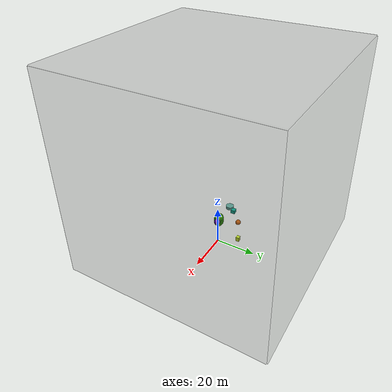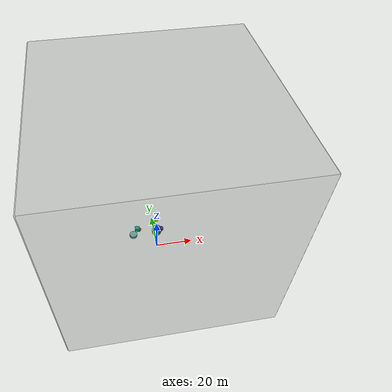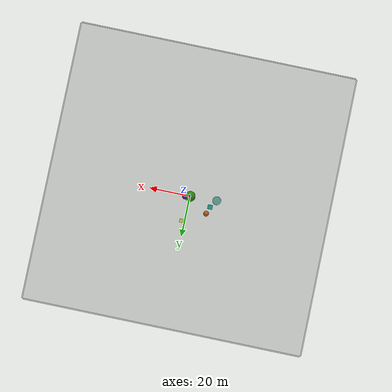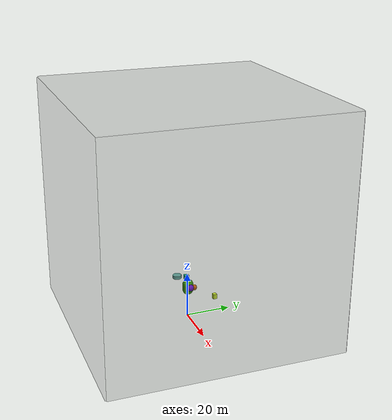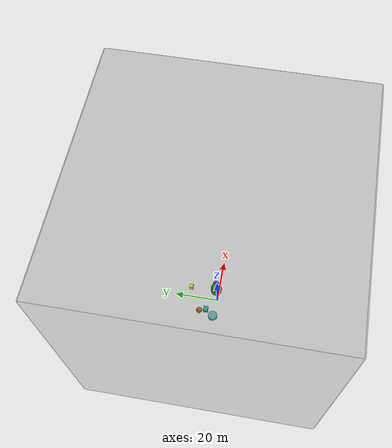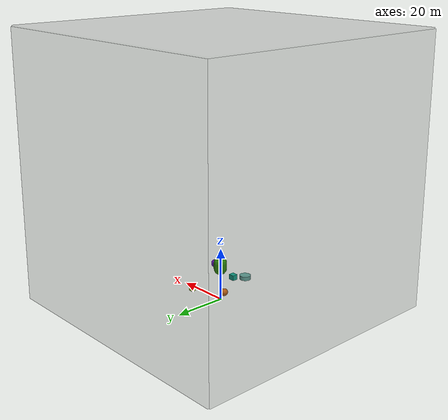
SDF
<!-- seed: 1717753088 -->
<sdf version='1.11'>
  <world name='world_0'>
    <gravity>0 0 -9.8066499999999994</gravity>
    <magnetic_field>5.5644999999999998e-06 2.2875799999999999e-05 -4.2388400000000002e-05</magnetic_field>
    <wind>
      <linear_velocity>9 7 0</linear_velocity>
    </wind>
    <physics default='false' type='ode'>
      <max_step_size>0.001</max_step_size>
      <real_time_factor>1</real_time_factor>
      <max_contacts>20</max_contacts>
    </physics>
    <model name='model_0'>
      <static>false</static>
      <self_collide>true</self_collide>
      <allow_auto_disable>true</allow_auto_disable>
      <enable_wind>false</enable_wind>
      <pose>-8.2897867111339725 5.7812832277281938 7.1811334114625271 0 0 0</pose>
      <link name='link_1719'>
        <pose>-4.5633922052765108 -5.9184052912851186 6.0361879332324699 0 0 0</pose>
        <inertial>
          <pose>0 0 0 0 0 0</pose>
          <mass>1</mass>
          <inertia>
            <ixx>1</ixx>
            <ixy>0</ixy>
            <ixz>0</ixz>
            <iyy>1</iyy>
            <iyz>0</iyz>
            <izz>1</izz>
          </inertia>
        </inertial>
        <enable_wind>false</enable_wind>
        <collision name='collision_1719'>
          <pose>0 0 0 0 0 0</pose>
          <geometry>
            <cylinder>
              <radius>1.9940557976308413</radius>
              <length>1.4205927552004056</length>
            </cylinder>
          </geometry>
          <surface>
            <contact>
              <collide_bitmask>255</collide_bitmask>
            </contact>
            <friction>
              <ode>
                <mu>1</mu>
                <mu2>1</mu2>
                <slip1>0</slip1>
                <slip2>0</slip2>
                <fdir1>0 0 0</fdir1>
              </ode>
            </friction>
          </surface>
        </collision>
        <visual name='visual_1719'>
          <pose>0 0 0 0 0 0</pose>
          <geometry>
            <cylinder>
              <radius>1.9940557976308413</radius>
              <length>1.4205927552004056</length>
            </cylinder>
          </geometry>
          <cast_shadows>true</cast_shadows>
          <laser_retro>0</laser_retro>
          <transparency>0</transparency>
          <visibility_flags>4294967295</visibility_flags>
          <material>
            <ambient>0.413090795 0.70328337 0.654662013 1</ambient>
            <diffuse>0.413090795 0.70328337 0.654662013 1</diffuse>
            <specular>0 0 0 1</specular>
            <emissive>0 0 0 1</emissive>
            <render_order>0</render_order>
            <lighting>true</lighting>
            <double_sided>false</double_sided>
            <shader type='pixel'/>
          </material>
        </visual>
      </link>
      <link name='link_1720'>
        <pose>-2.0583262766969508 -2.3615249767734419 6.2991732364629618 0 0 0</pose>
        <inertial>
          <pose>0 0 0 0 0 0</pose>
          <mass>1</mass>
          <inertia>
            <ixx>1</ixx>
            <ixy>0</ixy>
            <ixz>0</ixz>
            <iyy>1</iyy>
            <iyz>0</iyz>
            <izz>1</izz>
          </inertia>
        </inertial>
        <enable_wind>false</enable_wind>
        <collision name='collision_1720'>
          <pose>0 0 0 0 0 0</pose>
          <geometry>
            <box>
              <size>2.248438764146746 1.98749463911187 1.850484191761933</size>
            </box>
          </geometry>
          <surface>
            <contact>
              <collide_bitmask>255</collide_bitmask>
            </contact>
            <friction>
              <ode>
                <mu>1</mu>
                <mu2>1</mu2>
                <slip1>0</slip1>
                <slip2>0</slip2>
                <fdir1>0 0 0</fdir1>
              </ode>
            </friction>
          </surface>
        </collision>
        <visual name='visual_1720'>
          <pose>0 0 0 0 0 0</pose>
          <geometry>
            <box>
              <size>2.248438764146746 1.98749463911187 1.850484191761933</size>
            </box>
          </geometry>
          <cast_shadows>true</cast_shadows>
          <laser_retro>0</laser_retro>
          <transparency>0</transparency>
          <visibility_flags>4294967295</visibility_flags>
          <material>
            <ambient>0.0587468632 0.703829288 0.59606725 1</ambient>
            <diffuse>0.0587468632 0.703829288 0.59606725 1</diffuse>
            <specular>0 0 0 1</specular>
            <emissive>0 0 0 1</emissive>
            <render_order>0</render_order>
            <lighting>true</lighting>
            <double_sided>false</double_sided>
            <shader type='pixel'/>
          </material>
        </visual>
      </link>
      <link name='link_1721'>
        <pose>9.9712011075313001 6.675154628305684 0.82905016259919306 0 0 0</pose>
        <inertial>
          <pose>0 0 0 0 0 0</pose>
          <mass>1</mass>
          <inertia>
            <ixx>1</ixx>
            <ixy>0</ixy>
            <ixz>0</ixz>
            <iyy>1</iyy>
            <iyz>0</iyz>
            <izz>1</izz>
          </inertia>
        </inertial>
        <enable_wind>false</enable_wind>
        <collision name='collision_1721'>
          <pose>0 0 0 0 0 0</pose>
          <geometry>
            <box>
              <size>1.7339511841173494 1.6173103806934859 2.2285206693061155</size>
            </box>
          </geometry>
          <surface>
            <contact>
              <collide_bitmask>255</collide_bitmask>
            </contact>
            <friction>
              <ode>
                <mu>1</mu>
                <mu2>1</mu2>
                <slip1>0</slip1>
                <slip2>0</slip2>
                <fdir1>0 0 0</fdir1>
              </ode>
            </friction>
          </surface>
        </collision>
        <visual name='visual_1721'>
          <pose>0 0 0 0 0 0</pose>
          <geometry>
            <box>
              <size>1.7339511841173494 1.6173103806934859 2.2285206693061155</size>
            </box>
          </geometry>
          <cast_shadows>true</cast_shadows>
          <laser_retro>0</laser_retro>
          <transparency>0</transparency>
          <visibility_flags>4294967295</visibility_flags>
          <material>
            <ambient>0.853846848 0.98719573 0.187665939 1</ambient>
            <diffuse>0.853846848 0.98719573 0.187665939 1</diffuse>
            <specular>0 0 0 1</specular>
            <emissive>0 0 0 1</emissive>
            <render_order>0</render_order>
            <lighting>true</lighting>
            <double_sided>false</double_sided>
            <shader type='pixel'/>
          </material>
        </visual>
      </link>
      <joint name='joint_1146' type='gearbox'>
        <pose>0 0 0 0 0 0</pose>
        <parent>link_1720</parent>
        <child>link_1721</child>
        <axis>
          <xyz>0.73863624010579487 0.19786786202531162 0.64441043906807305</xyz>
          <limit>
            <lower>-inf</lower>
            <upper>inf</upper>
            <effort>inf</effort>
            <velocity>8.3772748341571042</velocity>
            <stiffness>100000000</stiffness>
            <dissipation>1</dissipation>
          </limit>
          <dynamics>
            <spring_reference>0</spring_reference>
            <spring_stiffness>0</spring_stiffness>
            <damping>0</damping>
            <friction>0</friction>
          </dynamics>
        </axis>
        <axis2>
          <xyz>0.96726498532808258 0.045188885070622402 0.24971266052072427</xyz>
          <limit>
            <lower>-inf</lower>
            <upper>inf</upper>
            <effort>inf</effort>
            <velocity>0.10327118672036062</velocity>
            <stiffness>100000000</stiffness>
            <dissipation>1</dissipation>
          </limit>
          <dynamics>
            <spring_reference>0</spring_reference>
            <spring_stiffness>0</spring_stiffness>
            <damping>0</damping>
            <friction>0</friction>
          </dynamics>
        </axis2>
      </joint>
      <joint name='joint_1147' type='revolute'>
        <pose>0 0 0 0 0 0</pose>
        <parent>link_1721</parent>
        <child>link_1719</child>
        <axis>
          <xyz>0.87409232303947226 0.2732031627134674 0.40164990064335593</xyz>
          <limit>
            <lower>-inf</lower>
            <upper>inf</upper>
            <effort>inf</effort>
            <velocity>6.3525222033550683</velocity>
            <stiffness>100000000</stiffness>
            <dissipation>1</dissipation>
          </limit>
          <dynamics>
            <spring_reference>0</spring_reference>
            <spring_stiffness>0</spring_stiffness>
            <damping>0</damping>
            <friction>0</friction>
          </dynamics>
        </axis>
        <axis2>
          <xyz>0.71614026259350705 0.65113398302230485 0.25133177364991416</xyz>
          <limit>
            <lower>-inf</lower>
            <upper>inf</upper>
            <effort>inf</effort>
            <velocity>8.5536969500020597</velocity>
            <stiffness>100000000</stiffness>
            <dissipation>1</dissipation>
          </limit>
          <dynamics>
            <spring_reference>0</spring_reference>
            <spring_stiffness>0</spring_stiffness>
            <damping>0</damping>
            <friction>0</friction>
          </dynamics>
        </axis2>
      </joint>
    </model>
    <model name='model_1'>
      <static>true</static>
      <self_collide>false</self_collide>
      <allow_auto_disable>true</allow_auto_disable>
      <enable_wind>true</enable_wind>
      <pose>-0.092260494976606822 -3.0649791786543057 4.8073307403388732 0 0 0</pose>
      <link name='link_1722'>
        <pose>-0.086721056239669636 3.4862134955127715 9.0024248462847076 0 0 0</pose>
        <inertial>
          <pose>0 0 0 0 0 0</pose>
          <mass>1</mass>
          <inertia>
            <ixx>1</ixx>
            <ixy>0</ixy>
            <ixz>0</ixz>
            <iyy>1</iyy>
            <iyz>0</iyz>
            <izz>1</izz>
          </inertia>
        </inertial>
        <enable_wind>false</enable_wind>
        <collision name='collision_1722'>
          <pose>0 0 0 0 0 0</pose>
          <geometry>
            <capsule>
              <radius>2.4209872634221963</radius>
              <length>2.192740414667548</length>
            </capsule>
          </geometry>
          <surface>
            <contact>
              <collide_bitmask>255</collide_bitmask>
            </contact>
            <friction>
              <ode>
                <mu>1</mu>
                <mu2>1</mu2>
                <slip1>0</slip1>
                <slip2>0</slip2>
                <fdir1>0 0 0</fdir1>
              </ode>
            </friction>
          </surface>
        </collision>
        <visual name='visual_1722'>
          <pose>0 0 0 0 0 0</pose>
          <geometry>
            <capsule>
              <radius>2.4209872634221963</radius>
              <length>2.192740414667548</length>
            </capsule>
          </geometry>
          <cast_shadows>true</cast_shadows>
          <laser_retro>0</laser_retro>
          <transparency>0</transparency>
          <visibility_flags>4294967295</visibility_flags>
          <material>
            <ambient>0.197924182 0.612244129 0.0341786854 1</ambient>
            <diffuse>0.197924182 0.612244129 0.0341786854 1</diffuse>
            <specular>0 0 0 1</specular>
            <emissive>0 0 0 1</emissive>
            <render_order>0</render_order>
            <lighting>true</lighting>
            <double_sided>false</double_sided>
            <shader type='pixel'/>
          </material>
        </visual>
      </link>
      <link name='link_1723'>
        <pose>2.1802378550540542 3.9017341833441819 9.343270347845543 0 0 0</pose>
        <inertial>
          <pose>0 0 0 0 0 0</pose>
          <mass>1</mass>
          <inertia>
            <ixx>1</ixx>
            <ixy>0</ixy>
            <ixz>0</ixz>
            <iyy>1</iyy>
            <iyz>0</iyz>
            <izz>1</izz>
          </inertia>
        </inertial>
        <enable_wind>false</enable_wind>
        <collision name='collision_1723'>
          <pose>0 0 0 0 0 0</pose>
          <geometry>
            <sphere>
              <radius>1.4866686434290914</radius>
            </sphere>
          </geometry>
          <surface>
            <contact>
              <collide_bitmask>255</collide_bitmask>
            </contact>
            <friction>
              <ode>
                <mu>1</mu>
                <mu2>1</mu2>
                <slip1>0</slip1>
                <slip2>0</slip2>
                <fdir1>0 0 0</fdir1>
              </ode>
            </friction>
          </surface>
        </collision>
        <visual name='visual_1723'>
          <pose>0 0 0 0 0 0</pose>
          <geometry>
            <sphere>
              <radius>1.4866686434290914</radius>
            </sphere>
          </geometry>
          <cast_shadows>true</cast_shadows>
          <laser_retro>0</laser_retro>
          <transparency>0</transparency>
          <visibility_flags>4294967295</visibility_flags>
          <material>
            <ambient>0.431758434 0.0797444433 0.80739212 1</ambient>
            <diffuse>0.431758434 0.0797444433 0.80739212 1</diffuse>
            <specular>0 0 0 1</specular>
            <emissive>0 0 0 1</emissive>
            <render_order>0</render_order>
            <lighting>true</lighting>
            <double_sided>false</double_sided>
            <shader type='pixel'/>
          </material>
        </visual>
      </link>
      <link name='link_1724'>
        <pose>-9.1870862773930817 9.8303736349829691 3.3188880787439068 0 0 0</pose>
        <inertial>
          <pose>0 0 0 0 0 0</pose>
          <mass>1</mass>
          <inertia>
            <ixx>1</ixx>
            <ixy>0</ixy>
            <ixz>0</ixz>
            <iyy>1</iyy>
            <iyz>0</iyz>
            <izz>1</izz>
          </inertia>
        </inertial>
        <enable_wind>false</enable_wind>
        <collision name='collision_1724'>
          <pose>0 0 0 0 0 0</pose>
          <geometry>
            <sphere>
              <radius>1.3318961154052325</radius>
            </sphere>
          </geometry>
          <surface>
            <contact>
              <collide_bitmask>255</collide_bitmask>
            </contact>
            <friction>
              <ode>
                <mu>1</mu>
                <mu2>1</mu2>
                <slip1>0</slip1>
                <slip2>0</slip2>
                <fdir1>0 0 0</fdir1>
              </ode>
            </friction>
          </surface>
        </collision>
        <visual name='visual_1724'>
          <pose>0 0 0 0 0 0</pose>
          <geometry>
            <sphere>
              <radius>1.3318961154052325</radius>
            </sphere>
          </geometry>
          <cast_shadows>true</cast_shadows>
          <laser_retro>0</laser_retro>
          <transparency>0</transparency>
          <visibility_flags>4294967295</visibility_flags>
          <material>
            <ambient>0.802039564 0.401259691 0.07018736 1</ambient>
            <diffuse>0.802039564 0.401259691 0.07018736 1</diffuse>
            <specular>0 0 0 1</specular>
            <emissive>0 0 0 1</emissive>
            <render_order>0</render_order>
            <lighting>true</lighting>
            <double_sided>false</double_sided>
            <shader type='pixel'/>
          </material>
        </visual>
      </link>
      <joint name='joint_1148' type='revolute'>
        <pose>0 0 0 0 0 0</pose>
        <parent>link_1723</parent>
        <child>link_1722</child>
        <axis>
          <xyz>0.88460702212274511 0.12458627293102827 0.44938700137886101</xyz>
          <limit>
            <lower>-inf</lower>
            <upper>inf</upper>
            <effort>inf</effort>
            <velocity>7.1524632860846991</velocity>
            <stiffness>100000000</stiffness>
            <dissipation>1</dissipation>
          </limit>
          <dynamics>
            <spring_reference>0</spring_reference>
            <spring_stiffness>0</spring_stiffness>
            <damping>0</damping>
            <friction>0</friction>
          </dynamics>
        </axis>
        <axis2>
          <xyz>0.63464509644322442 0.52384132726103838 0.56816887050767229</xyz>
          <limit>
            <lower>-inf</lower>
            <upper>inf</upper>
            <effort>inf</effort>
            <velocity>0.74202906190795503</velocity>
            <stiffness>100000000</stiffness>
            <dissipation>1</dissipation>
          </limit>
          <dynamics>
            <spring_reference>0</spring_reference>
            <spring_stiffness>0</spring_stiffness>
            <damping>0</damping>
            <friction>0</friction>
          </dynamics>
        </axis2>
      </joint>
      <joint name='joint_1149' type='continuous'>
        <pose>0 0 0 0 0 0</pose>
        <parent>link_1722</parent>
        <child>link_1724</child>
        <axis>
          <xyz>0.64250876485416364 0.7243717913151847 0.24993598186817276</xyz>
          <limit>
            <lower>-inf</lower>
            <upper>inf</upper>
            <effort>inf</effort>
            <velocity>8.9694083777327389</velocity>
            <stiffness>100000000</stiffness>
            <dissipation>1</dissipation>
          </limit>
          <dynamics>
            <spring_reference>0</spring_reference>
            <spring_stiffness>0</spring_stiffness>
            <damping>0</damping>
            <friction>0</friction>
          </dynamics>
        </axis>
        <axis2>
          <xyz>0.82159914046977245 0.53847539507299247 0.18713391269440088</xyz>
          <limit>
            <lower>-inf</lower>
            <upper>inf</upper>
            <effort>inf</effort>
            <velocity>3.65675885434508</velocity>
            <stiffness>100000000</stiffness>
            <dissipation>1</dissipation>
          </limit>
          <dynamics>
            <spring_reference>0</spring_reference>
            <spring_stiffness>0</spring_stiffness>
            <damping>0</damping>
            <friction>0</friction>
          </dynamics>
        </axis2>
      </joint>
    </model>
    <model name='ground_model'>
      <static>true</static>
      <self_collide>false</self_collide>
      <allow_auto_disable>true</allow_auto_disable>
      <enable_wind>false</enable_wind>
      <pose>0 0 0 0 0 0</pose>
      <link name='ground_link'>
        <pose>0 0 0 0 0 0</pose>
        <inertial>
          <pose>0 0 0 0 0 0</pose>
          <mass>1</mass>
          <inertia>
            <ixx>1</ixx>
            <ixy>0</ixy>
            <ixz>0</ixz>
            <iyy>1</iyy>
            <iyz>0</iyz>
            <izz>1</izz>
          </inertia>
        </inertial>
        <enable_wind>false</enable_wind>
        <collision name='ground_collision'>
          <pose>0 0 0 0 0 0</pose>
          <geometry>
            <plane>
              <normal>0 0 1</normal>
              <size>100 100</size>
            </plane>
          </geometry>
          <surface>
            <contact>
              <collide_bitmask>255</collide_bitmask>
            </contact>
            <friction>
              <ode>
                <mu>1</mu>
                <mu2>1</mu2>
                <slip1>0</slip1>
                <slip2>0</slip2>
                <fdir1>0 0 0</fdir1>
              </ode>
            </friction>
          </surface>
        </collision>
      </link>
    </model>
    <model name='ceiling_model'>
      <static>true</static>
      <self_collide>false</self_collide>
      <allow_auto_disable>true</allow_auto_disable>
      <enable_wind>false</enable_wind>
      <pose>0 0 100 0 0 0</pose>
      <link name='ceiling_link'>
        <pose>0 0 0 0 0 0</pose>
        <inertial>
          <pose>0 0 0 0 0 0</pose>
          <mass>1</mass>
          <inertia>
            <ixx>1</ixx>
            <ixy>0</ixy>
            <ixz>0</ixz>
            <iyy>1</iyy>
            <iyz>0</iyz>
            <izz>1</izz>
          </inertia>
        </inertial>
        <enable_wind>false</enable_wind>
        <collision name='ceiling_collision'>
          <pose>0 0 0 0 0 0</pose>
          <geometry>
            <box>
              <size>102 102 3</size>
            </box>
          </geometry>
          <surface>
            <contact>
              <collide_bitmask>255</collide_bitmask>
            </contact>
            <friction>
              <ode>
                <mu>1</mu>
                <mu2>1</mu2>
                <slip1>0</slip1>
                <slip2>0</slip2>
                <fdir1>0 0 0</fdir1>
              </ode>
            </friction>
          </surface>
        </collision>
        <visual name='ceiling_visual'>
          <pose>0 0 0 0 0 0</pose>
          <geometry>
            <box>
              <size>102 102 3</size>
            </box>
          </geometry>
          <cast_shadows>true</cast_shadows>
          <laser_retro>0</laser_retro>
          <transparency>0</transparency>
          <visibility_flags>4294967295</visibility_flags>
          <material>
            <ambient>0.200000003 0.200000003 0.200000003 0.200000003</ambient>
            <diffuse>0.200000003 0.200000003 0.200000003 0.200000003</diffuse>
            <specular>0 0 0 1</specular>
            <emissive>0 0 0 1</emissive>
            <render_order>0</render_order>
            <lighting>true</lighting>
            <double_sided>false</double_sided>
            <shader type='pixel'/>
          </material>
        </visual>
      </link>
    </model>
    <model name='west_model'>
      <static>true</static>
      <self_collide>false</self_collide>
      <allow_auto_disable>true</allow_auto_disable>
      <enable_wind>false</enable_wind>
      <pose>0 50 50 0 0 0</pose>
      <link name='west_link'>
        <pose>0 0 0 0 0 0</pose>
        <inertial>
          <pose>0 0 0 0 0 0</pose>
          <mass>1</mass>
          <inertia>
            <ixx>1</ixx>
            <ixy>0</ixy>
            <ixz>0</ixz>
            <iyy>1</iyy>
            <iyz>0</iyz>
            <izz>1</izz>
          </inertia>
        </inertial>
        <enable_wind>false</enable_wind>
        <collision name='west_collision'>
          <pose>0 0 0 0 0 0</pose>
          <geometry>
            <box>
              <size>102 3 102</size>
            </box>
          </geometry>
          <surface>
            <contact>
              <collide_bitmask>255</collide_bitmask>
            </contact>
            <friction>
              <ode>
                <mu>1</mu>
                <mu2>1</mu2>
                <slip1>0</slip1>
                <slip2>0</slip2>
                <fdir1>0 0 0</fdir1>
              </ode>
            </friction>
          </surface>
        </collision>
        <visual name='west_visual'>
          <pose>0 0 0 0 0 0</pose>
          <geometry>
            <box>
              <size>102 3 102</size>
            </box>
          </geometry>
          <cast_shadows>true</cast_shadows>
          <laser_retro>0</laser_retro>
          <transparency>0</transparency>
          <visibility_flags>4294967295</visibility_flags>
          <material>
            <ambient>0.200000003 0.200000003 0.200000003 0.200000003</ambient>
            <diffuse>0.200000003 0.200000003 0.200000003 0.200000003</diffuse>
            <specular>0 0 0 1</specular>
            <emissive>0 0 0 1</emissive>
            <render_order>0</render_order>
            <lighting>true</lighting>
            <double_sided>false</double_sided>
            <shader type='pixel'/>
          </material>
        </visual>
      </link>
    </model>
    <model name='east_model'>
      <static>true</static>
      <self_collide>false</self_collide>
      <allow_auto_disable>true</allow_auto_disable>
      <enable_wind>false</enable_wind>
      <pose>0 -50 50 0 0 0</pose>
      <link name='east_link'>
        <pose>0 0 0 0 0 0</pose>
        <inertial>
          <pose>0 0 0 0 0 0</pose>
          <mass>1</mass>
          <inertia>
            <ixx>1</ixx>
            <ixy>0</ixy>
            <ixz>0</ixz>
            <iyy>1</iyy>
            <iyz>0</iyz>
            <izz>1</izz>
          </inertia>
        </inertial>
        <enable_wind>false</enable_wind>
        <collision name='east_collision'>
          <pose>0 0 0 0 0 0</pose>
          <geometry>
            <box>
              <size>102 3 102</size>
            </box>
          </geometry>
          <surface>
            <contact>
              <collide_bitmask>255</collide_bitmask>
            </contact>
            <friction>
              <ode>
                <mu>1</mu>
                <mu2>1</mu2>
                <slip1>0</slip1>
                <slip2>0</slip2>
                <fdir1>0 0 0</fdir1>
              </ode>
            </friction>
          </surface>
        </collision>
        <visual name='east_visual'>
          <pose>0 0 0 0 0 0</pose>
          <geometry>
            <box>
              <size>102 3 102</size>
            </box>
          </geometry>
          <cast_shadows>true</cast_shadows>
          <laser_retro>0</laser_retro>
          <transparency>0</transparency>
          <visibility_flags>4294967295</visibility_flags>
          <material>
            <ambient>0.200000003 0.200000003 0.200000003 0.200000003</ambient>
            <diffuse>0.200000003 0.200000003 0.200000003 0.200000003</diffuse>
            <specular>0 0 0 1</specular>
            <emissive>0 0 0 1</emissive>
            <render_order>0</render_order>
            <lighting>true</lighting>
            <double_sided>false</double_sided>
            <shader type='pixel'/>
          </material>
        </visual>
      </link>
    </model>
    <model name='north_model'>
      <static>true</static>
      <self_collide>false</self_collide>
      <allow_auto_disable>true</allow_auto_disable>
      <enable_wind>false</enable_wind>
      <pose>50 0 50 0 0 0</pose>
      <link name='north_link'>
        <pose>0 0 0 0 0 0</pose>
        <inertial>
          <pose>0 0 0 0 0 0</pose>
          <mass>1</mass>
          <inertia>
            <ixx>1</ixx>
            <ixy>0</ixy>
            <ixz>0</ixz>
            <iyy>1</iyy>
            <iyz>0</iyz>
            <izz>1</izz>
          </inertia>
        </inertial>
        <enable_wind>false</enable_wind>
        <collision name='north_collision'>
          <pose>0 0 0 0 0 0</pose>
          <geometry>
            <box>
              <size>3 102 102</size>
            </box>
          </geometry>
          <surface>
            <contact>
              <collide_bitmask>255</collide_bitmask>
            </contact>
            <friction>
              <ode>
                <mu>1</mu>
                <mu2>1</mu2>
                <slip1>0</slip1>
                <slip2>0</slip2>
                <fdir1>0 0 0</fdir1>
              </ode>
            </friction>
          </surface>
        </collision>
        <visual name='north_visual'>
          <pose>0 0 0 0 0 0</pose>
          <geometry>
            <box>
              <size>3 102 102</size>
            </box>
          </geometry>
          <cast_shadows>true</cast_shadows>
          <laser_retro>0</laser_retro>
          <transparency>0</transparency>
          <visibility_flags>4294967295</visibility_flags>
          <material>
            <ambient>0.200000003 0.200000003 0.200000003 0.200000003</ambient>
            <diffuse>0.200000003 0.200000003 0.200000003 0.200000003</diffuse>
            <specular>0 0 0 1</specular>
            <emissive>0 0 0 1</emissive>
            <render_order>0</render_order>
            <lighting>true</lighting>
            <double_sided>false</double_sided>
            <shader type='pixel'/>
          </material>
        </visual>
      </link>
    </model>
    <model name='south_model'>
      <static>true</static>
      <self_collide>false</self_collide>
      <allow_auto_disable>true</allow_auto_disable>
      <enable_wind>false</enable_wind>
      <pose>-50 0 50 0 0 0</pose>
      <link name='south_link'>
        <pose>0 0 0 0 0 0</pose>
        <inertial>
          <pose>0 0 0 0 0 0</pose>
          <mass>1</mass>
          <inertia>
            <ixx>1</ixx>
            <ixy>0</ixy>
            <ixz>0</ixz>
            <iyy>1</iyy>
            <iyz>0</iyz>
            <izz>1</izz>
          </inertia>
        </inertial>
        <enable_wind>false</enable_wind>
        <collision name='south_collision'>
          <pose>0 0 0 0 0 0</pose>
          <geometry>
            <box>
              <size>3 102 102</size>
            </box>
          </geometry>
          <surface>
            <contact>
              <collide_bitmask>255</collide_bitmask>
            </contact>
            <friction>
              <ode>
                <mu>1</mu>
                <mu2>1</mu2>
                <slip1>0</slip1>
                <slip2>0</slip2>
                <fdir1>0 0 0</fdir1>
              </ode>
            </friction>
          </surface>
        </collision>
        <visual name='south_visual'>
          <pose>0 0 0 0 0 0</pose>
          <geometry>
            <box>
              <size>3 102 102</size>
            </box>
          </geometry>
          <cast_shadows>true</cast_shadows>
          <laser_retro>0</laser_retro>
          <transparency>0</transparency>
          <visibility_flags>4294967295</visibility_flags>
          <material>
            <ambient>0.200000003 0.200000003 0.200000003 0.200000003</ambient>
            <diffuse>0.200000003 0.200000003 0.200000003 0.200000003</diffuse>
            <specular>0 0 0 1</specular>
            <emissive>0 0 0 1</emissive>
            <render_order>0</render_order>
            <lighting>true</lighting>
            <double_sided>false</double_sided>
            <shader type='pixel'/>
          </material>
        </visual>
      </link>
    </model>
    <atmosphere type='adiabatic'>
      <temperature>288.14999999999998</temperature>
      <pressure>101325</pressure>
      <temperature_gradient>-0.0064999999999999997</temperature_gradient>
    </atmosphere>
    <scene>
      <ambient>0.400000006 0.400000006 0.400000006 1</ambient>
      <background>0.699999988 0.699999988 0.699999988 1</background>
      <grid>true</grid>
      <origin_visual>true</origin_visual>
      <shadows>true</shadows>
    </scene>
  </world>
</sdf>
